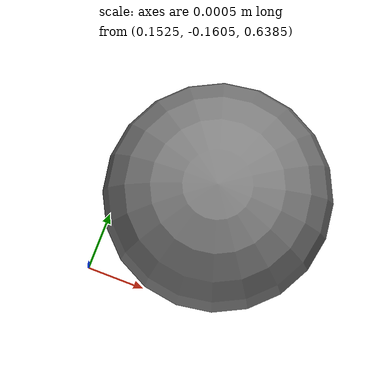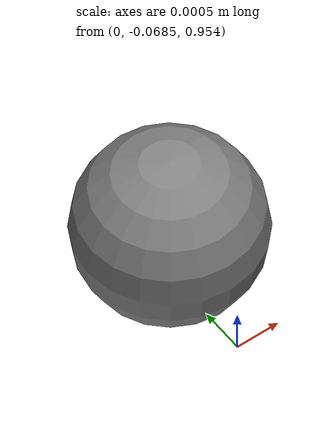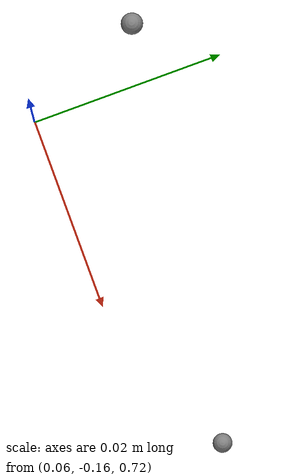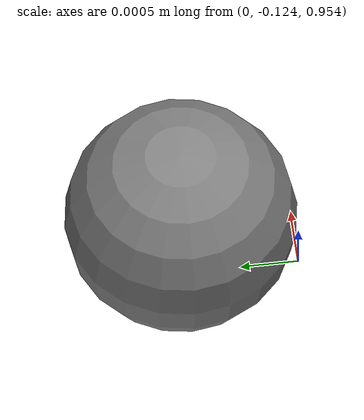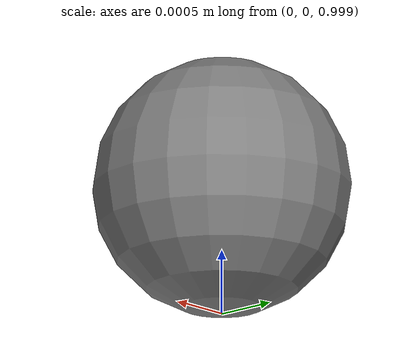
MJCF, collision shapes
<mujoco model="hopejr">
  <compiler angle="radian" meshdir="assets" autolimits="true" balanceinertia="true"/>
  <option integrator="implicitfast" impratio="10"/>
  <default>
    <default class="hopejr">
    <material specular="0.5" shininess="0.25"/>
    <joint armature="0.1" damping="1" axis="0 1 0" range="-1.5707 1.5707"/>
    <general dyntype="none" biastype="affine" ctrlrange="-1.5707 1.5707"/>
    <default class="visual">
      <geom type="mesh" contype="0" conaffinity="0" group="2"/>
    </default>
    <default class="collision">
      <geom group="3"/>
    </default>
    </default>
  </default>

  <asset>
    <material class="hopejr" name="black" rgba="0.25 0.25 0.25 1"/>
    <!--Visual-->
    <mesh file="link0.obj"/>
    <mesh file="link1.obj"/>
    <mesh file="link2.obj"/>
    <mesh file="link3.obj"/>
    <mesh file="link4.obj"/>
    <mesh file="link5.obj"/>
    <mesh file="link6.obj"/>
    <mesh file="link7.obj"/>
  </asset>

  <worldbody>
    <light name="top" pos="0 0 2" mode="trackcom"/>
    <body name="link0" childclass="hopejr" pos="0 0 1" quat="0 1 0 0">
      <inertial mass="5.403378" pos="-0.000073 0.033213 0.053448" fullinertia="1.374e-2 1.65e-2 8.903e-3 5.264e-6 -8.268e-3 5.568e-4"/>
      <geom mesh="link0" material="black" class="visual"/>
      <geom class="collision" size="0.001" pos="0 0 0"/>
      <body name="link1" pos="0 0.06740 0.04520">
        <inertial mass="1.585758" pos="-0.00008 0.02894 0.00029" fullinertia="9.685e-4 1.304e-3 1.146e-3 -8.921e-7 1.7602e-5 4.159e-6"/>
        <joint name="joint1" range="-1.5707 1.5707" axis="0 -1 0"/>
        <geom mesh="link1" material="black" class="visual" pos="0 -0.06740 -0.04520"/>
        <geom class="collision" size="0.001" pos="0 0 0"/>
        <body name="link2" pos="0.00009 0.05560 -0.00001">
          <inertial mass="2.433807" pos="0.01276 0.01468 0.07502" fullinertia="3.709e-3 4.261e-3 1.666e-3 -9.407e-5 -8.015e-4 -3.281e-4"/>
          <joint name="joint2" range="0 2.0943" axis="-0.9937 0 0.1123"/>
          <geom mesh="link2" material="black" class="visual" pos="-0.00009 -0.123 -0.0451"/>
          <geom class="collision" size="0.001" pos="0 0 0"/>
          <body name="link3" pos="0.0096 0.01468 0.08561">
            <inertial mass="1.429758" pos="0.01513 0.01035 0.08577" fullinertia="1.863e-3 2.250e-3 1.327e-3 -1.311e-4 -7.189e-4 -6.099e-5"/>
            <joint name="joint3" range="-1.5707 1.2217" axis="-0.1107 -0.168 -0.9795"/>
            <geom mesh="link3" material="black" class="visual" pos="-0.00977 -0.13768 -0.1308"/>
            <geom class="collision" size="0.001" pos="0 0 0"/>
            <body name="link4" pos="0.04984 0.0114 0.10715">
              <inertial mass="1.189750" pos="0.02232 -0.00353 0.03229" fullinertia="9.797e-4 8.950e-4 9.326e-4 -9.865e-5 -1.510e-4 -9.981e-5"/>
              <joint name="joint4" range="-0.2617 1.7453" axis="0.1286 0.9749 -0.1818"/>
              <geom mesh="link4" material="black" class="visual" pos="-0.05961 -0.14909 -0.23795"/>
              <geom class="collision" size="0.001" pos="0 0 0"/>
              <body name="link5" pos="0.03744 0.00411 0.04886">
                <inertial mass="1.179762" pos="0.03304 0.00157 0.04315" fullinertia="1.011e-3 1.228e-3 9.410e-4 1.144e-5 -2.305e-4 -4.775e-5"/>
                <joint name="joint5" range="-0.8726 2.0943" axis="-0.6071 -0.0675 -0.7918"/>
                <geom mesh="link5" material="black" class="visual" pos="-0.09706 -0.15321 -0.28682"/>
                <geom class="collision" size="0.001" pos="0 0 0"/>
                <body name="link6" pos="0.05639 0.00644 0.07376">
                  <inertial mass="0.203724" pos="0.00688 0.00170 0.00610" fullinertia="9.910e-5 8.856e-5 1.056e-4 3.921e-6 1.240e-5 -8.617e-7"/>
                  <joint name="joint6" range="-0.5235 0.1745" axis="-0.5397 0.7664 0.3484"/>
                  <geom mesh="link6" material="black" class="visual" pos="-0.15346 -0.15965 -0.36059"/>
                  <geom class="collision" size="0.001" pos="0 0 0"/>
                  <body name="link7" pos="0.02067 0.00463 0.02124">
                    <inertial mass="1.932008" pos="0.04417 0.00783 0.03393" fullinertia="3.309e-3 5.223e-3 3.204e-3 -3.542e-4 -1.491e-3 -3.674e-5"/>
                    <joint name="joint7" range="-0.8726 0.1745" axis="0.4888 0.6222 -0.6115"/>
                    <geom mesh="link7" material="black" class="visual" pos="-0.17413 -0.16428 -0.38183"/>
                    <geom class="collision" size="0.001" pos="0 0 0"/>
                  </body>
                </body>
              </body>
            </body>
          </body>
        </body>
      </body>
    </body>
  </worldbody>

  <actuator>
    <general class="hopejr" name="actuator1" joint="joint1" gainprm="4500" biasprm="0 -4500 -450" ctrlrange="-1.5707 1.5707"/>
    <general class="hopejr" name="actuator2" joint="joint2" gainprm="4500" biasprm="0 -4500 -450" ctrlrange="0 2.0943"/>
    <general class="hopejr" name="actuator3" joint="joint3" gainprm="3500" biasprm="0 -3500 -350" ctrlrange="-1.5707 1.2217"/>
    <general class="hopejr" name="actuator4" joint="joint4" gainprm="3500" biasprm="0 -3500 -350" ctrlrange="-0.2617 1.7453"/>
    <general class="hopejr" name="actuator5" joint="joint5" gainprm="2000" biasprm="0 -2000 -200" ctrlrange="-0.8726 2.0943"/>
    <general class="hopejr" name="actuator6" joint="joint6" gainprm="2000" biasprm="0 -2000 -200" ctrlrange="-0.5235 0.1745"/>
    <general class="hopejr" name="actuator7" joint="joint7" gainprm="2000" biasprm="0 -2000 -200" ctrlrange="-0.8726 0.1745"/>
  </actuator>
</mujoco>
